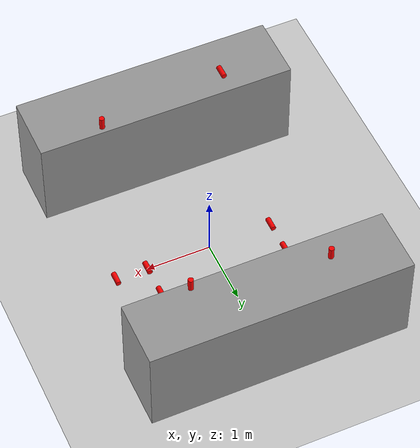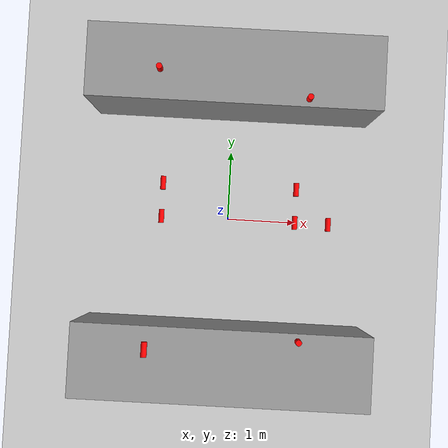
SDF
<sdf version="1.5">
 <world name="default">
  <include><uri>model://sun</uri></include>
  <include><uri>model://ground_plane</uri></include>
  <include><uri>model://asphalt_plane</uri><pose>0 0 -0.055 0 0 0</pose></include>
  <model name="unit_box">
   <static>1</static>
   <pose>0 -2.0 0.75 0 0 1.57079632679</pose>
   <link name="link">
    <inertial>
     <mass>1</mass>
     <inertia>
      <ixx>0.166667</ixx>
      <ixy>0</ixy>
      <ixz>0</ixz>
      <iyy>0.166667</iyy>
      <iyz>0</iyz>
      <izz>0.166667</izz>
     </inertia>
    </inertial>
    <collision name="collision"><geometry><box><size>1 4 1.5</size></box></geometry></collision>
    <visual name="visual">
     <geometry><box><size>1 4 1.5</size></box></geometry>
     <material>
      <script><name>Gazebo/Grey</name><uri>file://media/materials/scripts/gazebo.material</uri></script>
     </material>
    </visual>
   </link>
  </model>
  <model name="cylinder_red_shelf">
   <link name="link_0">
    <pose>1.0 -1.6 1.6 0 0 0</pose>
    <inertial>
     <mass>1</mass>
     <inertia><ixx>0.145833</ixx><ixy>0</ixy><ixz>0</ixz><iyy>0.145833</iyy><iyz>0</iyz><izz>0.125</izz></inertia>
    </inertial>
    <visual name="visual">
     <geometry><cylinder><radius>0.04</radius><length>0.2</length></cylinder></geometry>
     <material>
      <lighting>1</lighting>
      <script><uri>file://media/materials/scripts/gazebo.material</uri><name>Gazebo/Grey</name></script>
      <ambient>1 0 0 1</ambient>
      <diffuse>1 0 0 1</diffuse>
      <specular>0 0 0 1</specular>
      <emissive>0 0 0 1</emissive>
      <shader type="vertex"><normal_map>__default__</normal_map></shader>
     </material>
    </visual>
    <collision name="collision">
     <geometry><cylinder><radius>0.04</radius><length>0.2</length></cylinder></geometry>
     <surface>
      <friction>
       <ode><mu>1</mu><mu2>1</mu2><fdir1>0 0 0</fdir1><slip1>0</slip1><slip2>0</slip2></ode>
       <torsional>
        <coefficient>1</coefficient>
        <patch_radius>0</patch_radius>
        <surface_radius>0</surface_radius>
        <use_patch_radius>1</use_patch_radius>
        <ode><slip>0</slip></ode>
       </torsional>
      </friction>
      <bounce><restitution_coefficient>0</restitution_coefficient><threshold>1e+06</threshold></bounce>
      <contact>
       <collide_without_contact>0</collide_without_contact>
       <collide_without_contact_bitmask>1</collide_without_contact_bitmask>
       <collide_bitmask>1</collide_bitmask>
       <ode>
        <soft_cfm>0</soft_cfm>
        <soft_erp>0.2</soft_erp>
        <kp>1e+13</kp>
        <kd>1</kd>
        <max_vel>0.01</max_vel>
        <min_depth>0</min_depth>
       </ode>
       <bullet>
        <split_impulse>1</split_impulse>
        <split_impulse_penetration_threshold>-0.01</split_impulse_penetration_threshold>
        <soft_cfm>0</soft_cfm>
        <soft_erp>0.2</soft_erp>
        <kp>1e+13</kp>
        <kd>1</kd>
       </bullet>
      </contact>
     </surface>
    </collision>
   </link>
   <static>1</static>
  </model>
  <model name="cylinder_red_shelf">
   <link name="link_0">
    <pose>-1.0 -1.8 1.6 1.57079632679 0 0</pose>
    <inertial>
     <mass>1</mass>
     <inertia><ixx>0.145833</ixx><ixy>0</ixy><ixz>0</ixz><iyy>0.145833</iyy><iyz>0</iyz><izz>0.125</izz></inertia>
    </inertial>
    <visual name="visual">
     <geometry><cylinder><radius>0.04</radius><length>0.2</length></cylinder></geometry>
     <material>
      <lighting>1</lighting>
      <script><uri>file://media/materials/scripts/gazebo.material</uri><name>Gazebo/Grey</name></script>
      <ambient>1 0 0 1</ambient>
      <diffuse>1 0 0 1</diffuse>
      <specular>0 0 0 1</specular>
      <emissive>0 0 0 1</emissive>
      <shader type="vertex"><normal_map>__default__</normal_map></shader>
     </material>
    </visual>
    <collision name="collision">
     <geometry><cylinder><radius>0.04</radius><length>0.2</length></cylinder></geometry>
     <surface>
      <friction>
       <ode><mu>1</mu><mu2>1</mu2><fdir1>0 0 0</fdir1><slip1>0</slip1><slip2>0</slip2></ode>
       <torsional>
        <coefficient>1</coefficient>
        <patch_radius>0</patch_radius>
        <surface_radius>0</surface_radius>
        <use_patch_radius>1</use_patch_radius>
        <ode><slip>0</slip></ode>
       </torsional>
      </friction>
      <bounce><restitution_coefficient>0</restitution_coefficient><threshold>1e+06</threshold></bounce>
      <contact>
       <collide_without_contact>0</collide_without_contact>
       <collide_without_contact_bitmask>1</collide_without_contact_bitmask>
       <collide_bitmask>1</collide_bitmask>
       <ode>
        <soft_cfm>0</soft_cfm>
        <soft_erp>0.2</soft_erp>
        <kp>1e+13</kp>
        <kd>1</kd>
        <max_vel>0.01</max_vel>
        <min_depth>0</min_depth>
       </ode>
       <bullet>
        <split_impulse>1</split_impulse>
        <split_impulse_penetration_threshold>-0.01</split_impulse_penetration_threshold>
        <soft_cfm>0</soft_cfm>
        <soft_erp>0.2</soft_erp>
        <kp>1e+13</kp>
        <kd>1</kd>
       </bullet>
      </contact>
     </surface>
    </collision>
   </link>
   <static>1</static>
  </model>
  <model name="unit_box">
   <static>1</static>
   <pose>0 2.0 0.75 0 0 1.57079632679</pose>
   <link name="link">
    <inertial>
     <mass>1</mass>
     <inertia>
      <ixx>0.166667</ixx>
      <ixy>0</ixy>
      <ixz>0</ixz>
      <iyy>0.166667</iyy>
      <iyz>0</iyz>
      <izz>0.166667</izz>
     </inertia>
    </inertial>
    <collision name="collision"><geometry><box><size>1 4 1.5</size></box></geometry></collision>
    <visual name="visual">
     <geometry><box><size>1 4 1.5</size></box></geometry>
     <material>
      <script><name>Gazebo/Grey</name><uri>file://media/materials/scripts/gazebo.material</uri></script>
     </material>
    </visual>
   </link>
  </model>
  <model name="cylinder_red_shelf">
   <link name="link_0">
    <pose>1.0 1.6 1.6 0 0 0</pose>
    <inertial>
     <mass>1</mass>
     <inertia><ixx>0.145833</ixx><ixy>0</ixy><ixz>0</ixz><iyy>0.145833</iyy><iyz>0</iyz><izz>0.125</izz></inertia>
    </inertial>
    <visual name="visual">
     <geometry><cylinder><radius>0.04</radius><length>0.2</length></cylinder></geometry>
     <material>
      <lighting>1</lighting>
      <script><uri>file://media/materials/scripts/gazebo.material</uri><name>Gazebo/Grey</name></script>
      <ambient>1 0 0 1</ambient>
      <diffuse>1 0 0 1</diffuse>
      <specular>0 0 0 1</specular>
      <emissive>0 0 0 1</emissive>
      <shader type="vertex"><normal_map>__default__</normal_map></shader>
     </material>
    </visual>
    <collision name="collision">
     <geometry><cylinder><radius>0.04</radius><length>0.2</length></cylinder></geometry>
     <surface>
      <friction>
       <ode><mu>1</mu><mu2>1</mu2><fdir1>0 0 0</fdir1><slip1>0</slip1><slip2>0</slip2></ode>
       <torsional>
        <coefficient>1</coefficient>
        <patch_radius>0</patch_radius>
        <surface_radius>0</surface_radius>
        <use_patch_radius>1</use_patch_radius>
        <ode><slip>0</slip></ode>
       </torsional>
      </friction>
      <bounce><restitution_coefficient>0</restitution_coefficient><threshold>1e+06</threshold></bounce>
      <contact>
       <collide_without_contact>0</collide_without_contact>
       <collide_without_contact_bitmask>1</collide_without_contact_bitmask>
       <collide_bitmask>1</collide_bitmask>
       <ode>
        <soft_cfm>0</soft_cfm>
        <soft_erp>0.2</soft_erp>
        <kp>1e+13</kp>
        <kd>1</kd>
        <max_vel>0.01</max_vel>
        <min_depth>0</min_depth>
       </ode>
       <bullet>
        <split_impulse>1</split_impulse>
        <split_impulse_penetration_threshold>-0.01</split_impulse_penetration_threshold>
        <soft_cfm>0</soft_cfm>
        <soft_erp>0.2</soft_erp>
        <kp>1e+13</kp>
        <kd>1</kd>
       </bullet>
      </contact>
     </surface>
    </collision>
   </link>
   <static>1</static>
  </model>
  <model name="cylinder_red_shelf">
   <link name="link_0">
    <pose>-1.0 1.9 1.6 0 0 0</pose>
    <inertial>
     <mass>1</mass>
     <inertia><ixx>0.145833</ixx><ixy>0</ixy><ixz>0</ixz><iyy>0.145833</iyy><iyz>0</iyz><izz>0.125</izz></inertia>
    </inertial>
    <visual name="visual">
     <geometry><cylinder><radius>0.04</radius><length>0.2</length></cylinder></geometry>
     <material>
      <lighting>1</lighting>
      <script><uri>file://media/materials/scripts/gazebo.material</uri><name>Gazebo/Grey</name></script>
      <ambient>1 0 0 1</ambient>
      <diffuse>1 0 0 1</diffuse>
      <specular>0 0 0 1</specular>
      <emissive>0 0 0 1</emissive>
      <shader type="vertex"><normal_map>__default__</normal_map></shader>
     </material>
    </visual>
    <collision name="collision">
     <geometry><cylinder><radius>0.04</radius><length>0.2</length></cylinder></geometry>
     <surface>
      <friction>
       <ode><mu>1</mu><mu2>1</mu2><fdir1>0 0 0</fdir1><slip1>0</slip1><slip2>0</slip2></ode>
       <torsional>
        <coefficient>1</coefficient>
        <patch_radius>0</patch_radius>
        <surface_radius>0</surface_radius>
        <use_patch_radius>1</use_patch_radius>
        <ode><slip>0</slip></ode>
       </torsional>
      </friction>
      <bounce><restitution_coefficient>0</restitution_coefficient><threshold>1e+06</threshold></bounce>
      <contact>
       <collide_without_contact>0</collide_without_contact>
       <collide_without_contact_bitmask>1</collide_without_contact_bitmask>
       <collide_bitmask>1</collide_bitmask>
       <ode>
        <soft_cfm>0</soft_cfm>
        <soft_erp>0.2</soft_erp>
        <kp>1e+13</kp>
        <kd>1</kd>
        <max_vel>0.01</max_vel>
        <min_depth>0</min_depth>
       </ode>
       <bullet>
        <split_impulse>1</split_impulse>
        <split_impulse_penetration_threshold>-0.01</split_impulse_penetration_threshold>
        <soft_cfm>0</soft_cfm>
        <soft_erp>0.2</soft_erp>
        <kp>1e+13</kp>
        <kd>1</kd>
       </bullet>
      </contact>
     </surface>
    </collision>
   </link>
   <static>1</static>
  </model>
  <model name="cylinder_red_floor">
   <link name="link_0">
    <pose>1.0 0 0.04 1.57079632679 0 0</pose>
    <inertial>
     <mass>1</mass>
     <inertia><ixx>0.145833</ixx><ixy>0</ixy><ixz>0</ixz><iyy>0.145833</iyy><iyz>0</iyz><izz>0.125</izz></inertia>
    </inertial>
    <visual name="visual">
     <geometry><cylinder><radius>0.04</radius><length>0.2</length></cylinder></geometry>
     <material>
      <lighting>1</lighting>
      <script><uri>file://media/materials/scripts/gazebo.material</uri><name>Gazebo/Grey</name></script>
      <ambient>1 0 0 1</ambient>
      <diffuse>1 0 0 1</diffuse>
      <specular>0 0 0 1</specular>
      <emissive>0 0 0 1</emissive>
      <shader type="vertex"><normal_map>__default__</normal_map></shader>
     </material>
    </visual>
    <collision name="collision">
     <geometry><cylinder><radius>0.04</radius><length>0.2</length></cylinder></geometry>
     <surface>
      <friction>
       <ode><mu>1</mu><mu2>1</mu2><fdir1>0 0 0</fdir1><slip1>0</slip1><slip2>0</slip2></ode>
       <torsional>
        <coefficient>1</coefficient>
        <patch_radius>0</patch_radius>
        <surface_radius>0</surface_radius>
        <use_patch_radius>1</use_patch_radius>
        <ode><slip>0</slip></ode>
       </torsional>
      </friction>
      <bounce><restitution_coefficient>0</restitution_coefficient><threshold>1e+06</threshold></bounce>
      <contact>
       <collide_without_contact>0</collide_without_contact>
       <collide_without_contact_bitmask>1</collide_without_contact_bitmask>
       <collide_bitmask>1</collide_bitmask>
       <ode>
        <soft_cfm>0</soft_cfm>
        <soft_erp>0.2</soft_erp>
        <kp>1e+13</kp>
        <kd>1</kd>
        <max_vel>0.01</max_vel>
        <min_depth>0</min_depth>
       </ode>
       <bullet>
        <split_impulse>1</split_impulse>
        <split_impulse_penetration_threshold>-0.01</split_impulse_penetration_threshold>
        <soft_cfm>0</soft_cfm>
        <soft_erp>0.2</soft_erp>
        <kp>1e+13</kp>
        <kd>1</kd>
       </bullet>
      </contact>
     </surface>
    </collision>
   </link>
   <static>1</static>
  </model>
  <model name="cylinder_red_floor">
   <link name="link_0">
    <pose>1.0 0.5 0.04 1.57079632679 0 0</pose>
    <inertial>
     <mass>1</mass>
     <inertia><ixx>0.145833</ixx><ixy>0</ixy><ixz>0</ixz><iyy>0.145833</iyy><iyz>0</iyz><izz>0.125</izz></inertia>
    </inertial>
    <visual name="visual">
     <geometry><cylinder><radius>0.04</radius><length>0.2</length></cylinder></geometry>
     <material>
      <lighting>1</lighting>
      <script><uri>file://media/materials/scripts/gazebo.material</uri><name>Gazebo/Grey</name></script>
      <ambient>1 0 0 1</ambient>
      <diffuse>1 0 0 1</diffuse>
      <specular>0 0 0 1</specular>
      <emissive>0 0 0 1</emissive>
      <shader type="vertex"><normal_map>__default__</normal_map></shader>
     </material>
    </visual>
    <collision name="collision">
     <geometry><cylinder><radius>0.04</radius><length>0.2</length></cylinder></geometry>
     <surface>
      <friction>
       <ode><mu>1</mu><mu2>1</mu2><fdir1>0 0 0</fdir1><slip1>0</slip1><slip2>0</slip2></ode>
       <torsional>
        <coefficient>1</coefficient>
        <patch_radius>0</patch_radius>
        <surface_radius>0</surface_radius>
        <use_patch_radius>1</use_patch_radius>
        <ode><slip>0</slip></ode>
       </torsional>
      </friction>
      <bounce><restitution_coefficient>0</restitution_coefficient><threshold>1e+06</threshold></bounce>
      <contact>
       <collide_without_contact>0</collide_without_contact>
       <collide_without_contact_bitmask>1</collide_without_contact_bitmask>
       <collide_bitmask>1</collide_bitmask>
       <ode>
        <soft_cfm>0</soft_cfm>
        <soft_erp>0.2</soft_erp>
        <kp>1e+13</kp>
        <kd>1</kd>
        <max_vel>0.01</max_vel>
        <min_depth>0</min_depth>
       </ode>
       <bullet>
        <split_impulse>1</split_impulse>
        <split_impulse_penetration_threshold>-0.01</split_impulse_penetration_threshold>
        <soft_cfm>0</soft_cfm>
        <soft_erp>0.2</soft_erp>
        <kp>1e+13</kp>
        <kd>1</kd>
       </bullet>
      </contact>
     </surface>
    </collision>
   </link>
   <static>1</static>
  </model>
  <model name="cylinder_red_floor">
   <link name="link_0">
    <pose>1.5 0 0.04 1.57079632679 0 0</pose>
    <inertial>
     <mass>1</mass>
     <inertia><ixx>0.145833</ixx><ixy>0</ixy><ixz>0</ixz><iyy>0.145833</iyy><iyz>0</iyz><izz>0.125</izz></inertia>
    </inertial>
    <visual name="visual">
     <geometry><cylinder><radius>0.04</radius><length>0.2</length></cylinder></geometry>
     <material>
      <lighting>1</lighting>
      <script><uri>file://media/materials/scripts/gazebo.material</uri><name>Gazebo/Grey</name></script>
      <ambient>1 0 0 1</ambient>
      <diffuse>1 0 0 1</diffuse>
      <specular>0 0 0 1</specular>
      <emissive>0 0 0 1</emissive>
      <shader type="vertex"><normal_map>__default__</normal_map></shader>
     </material>
    </visual>
    <collision name="collision">
     <geometry><cylinder><radius>0.04</radius><length>0.2</length></cylinder></geometry>
     <surface>
      <friction>
       <ode><mu>1</mu><mu2>1</mu2><fdir1>0 0 0</fdir1><slip1>0</slip1><slip2>0</slip2></ode>
       <torsional>
        <coefficient>1</coefficient>
        <patch_radius>0</patch_radius>
        <surface_radius>0</surface_radius>
        <use_patch_radius>1</use_patch_radius>
        <ode><slip>0</slip></ode>
       </torsional>
      </friction>
      <bounce><restitution_coefficient>0</restitution_coefficient><threshold>1e+06</threshold></bounce>
      <contact>
       <collide_without_contact>0</collide_without_contact>
       <collide_without_contact_bitmask>1</collide_without_contact_bitmask>
       <collide_bitmask>1</collide_bitmask>
       <ode>
        <soft_cfm>0</soft_cfm>
        <soft_erp>0.2</soft_erp>
        <kp>1e+13</kp>
        <kd>1</kd>
        <max_vel>0.01</max_vel>
        <min_depth>0</min_depth>
       </ode>
       <bullet>
        <split_impulse>1</split_impulse>
        <split_impulse_penetration_threshold>-0.01</split_impulse_penetration_threshold>
        <soft_cfm>0</soft_cfm>
        <soft_erp>0.2</soft_erp>
        <kp>1e+13</kp>
        <kd>1</kd>
       </bullet>
      </contact>
     </surface>
    </collision>
   </link>
   <static>1</static>
  </model>
  <model name="cylinder_red_floor">
   <link name="link_0">
    <pose>-1.0 0 0.04 1.57079632679 0 0</pose>
    <inertial>
     <mass>1</mass>
     <inertia><ixx>0.145833</ixx><ixy>0</ixy><ixz>0</ixz><iyy>0.145833</iyy><iyz>0</iyz><izz>0.125</izz></inertia>
    </inertial>
    <visual name="visual">
     <geometry><cylinder><radius>0.04</radius><length>0.2</length></cylinder></geometry>
     <material>
      <lighting>1</lighting>
      <script><uri>file://media/materials/scripts/gazebo.material</uri><name>Gazebo/Grey</name></script>
      <ambient>1 0 0 1</ambient>
      <diffuse>1 0 0 1</diffuse>
      <specular>0 0 0 1</specular>
      <emissive>0 0 0 1</emissive>
      <shader type="vertex"><normal_map>__default__</normal_map></shader>
     </material>
    </visual>
    <collision name="collision">
     <geometry><cylinder><radius>0.04</radius><length>0.2</length></cylinder></geometry>
     <surface>
      <friction>
       <ode><mu>1</mu><mu2>1</mu2><fdir1>0 0 0</fdir1><slip1>0</slip1><slip2>0</slip2></ode>
       <torsional>
        <coefficient>1</coefficient>
        <patch_radius>0</patch_radius>
        <surface_radius>0</surface_radius>
        <use_patch_radius>1</use_patch_radius>
        <ode><slip>0</slip></ode>
       </torsional>
      </friction>
      <bounce><restitution_coefficient>0</restitution_coefficient><threshold>1e+06</threshold></bounce>
      <contact>
       <collide_without_contact>0</collide_without_contact>
       <collide_without_contact_bitmask>1</collide_without_contact_bitmask>
       <collide_bitmask>1</collide_bitmask>
       <ode>
        <soft_cfm>0</soft_cfm>
        <soft_erp>0.2</soft_erp>
        <kp>1e+13</kp>
        <kd>1</kd>
        <max_vel>0.01</max_vel>
        <min_depth>0</min_depth>
       </ode>
       <bullet>
        <split_impulse>1</split_impulse>
        <split_impulse_penetration_threshold>-0.01</split_impulse_penetration_threshold>
        <soft_cfm>0</soft_cfm>
        <soft_erp>0.2</soft_erp>
        <kp>1e+13</kp>
        <kd>1</kd>
       </bullet>
      </contact>
     </surface>
    </collision>
   </link>
   <static>1</static>
  </model>
  <model name="cylinder_red_floor">
   <link name="link_0">
    <pose>-1.0 0.5 0.04 1.57079632679 0 0</pose>
    <inertial>
     <mass>1</mass>
     <inertia><ixx>0.145833</ixx><ixy>0</ixy><ixz>0</ixz><iyy>0.145833</iyy><iyz>0</iyz><izz>0.125</izz></inertia>
    </inertial>
    <visual name="visual">
     <geometry><cylinder><radius>0.04</radius><length>0.2</length></cylinder></geometry>
     <material>
      <lighting>1</lighting>
      <script><uri>file://media/materials/scripts/gazebo.material</uri><name>Gazebo/Grey</name></script>
      <ambient>1 0 0 1</ambient>
      <diffuse>1 0 0 1</diffuse>
      <specular>0 0 0 1</specular>
      <emissive>0 0 0 1</emissive>
      <shader type="vertex"><normal_map>__default__</normal_map></shader>
     </material>
    </visual>
    <collision name="collision">
     <geometry><cylinder><radius>0.04</radius><length>0.2</length></cylinder></geometry>
     <surface>
      <friction>
       <ode><mu>1</mu><mu2>1</mu2><fdir1>0 0 0</fdir1><slip1>0</slip1><slip2>0</slip2></ode>
       <torsional>
        <coefficient>1</coefficient>
        <patch_radius>0</patch_radius>
        <surface_radius>0</surface_radius>
        <use_patch_radius>1</use_patch_radius>
        <ode><slip>0</slip></ode>
       </torsional>
      </friction>
      <bounce><restitution_coefficient>0</restitution_coefficient><threshold>1e+06</threshold></bounce>
      <contact>
       <collide_without_contact>0</collide_without_contact>
       <collide_without_contact_bitmask>1</collide_without_contact_bitmask>
       <collide_bitmask>1</collide_bitmask>
       <ode>
        <soft_cfm>0</soft_cfm>
        <soft_erp>0.2</soft_erp>
        <kp>1e+13</kp>
        <kd>1</kd>
        <max_vel>0.01</max_vel>
        <min_depth>0</min_depth>
       </ode>
       <bullet>
        <split_impulse>1</split_impulse>
        <split_impulse_penetration_threshold>-0.01</split_impulse_penetration_threshold>
        <soft_cfm>0</soft_cfm>
        <soft_erp>0.2</soft_erp>
        <kp>1e+13</kp>
        <kd>1</kd>
       </bullet>
      </contact>
     </surface>
    </collision>
   </link>
   <static>1</static>
  </model>
  <model name="cylinder_red_floor">
   <link name="link_0">
    <pose>1.0 0 0.04 1.57079632679 0 0</pose>
    <inertial>
     <mass>1</mass>
     <inertia><ixx>0.145833</ixx><ixy>0</ixy><ixz>0</ixz><iyy>0.145833</iyy><iyz>0</iyz><izz>0.125</izz></inertia>
    </inertial>
    <visual name="visual">
     <geometry><cylinder><radius>0.04</radius><length>0.2</length></cylinder></geometry>
     <material>
      <lighting>1</lighting>
      <script><uri>file://media/materials/scripts/gazebo.material</uri><name>Gazebo/Grey</name></script>
      <ambient>1 0 0 1</ambient>
      <diffuse>1 0 0 1</diffuse>
      <specular>0 0 0 1</specular>
      <emissive>0 0 0 1</emissive>
      <shader type="vertex"><normal_map>__default__</normal_map></shader>
     </material>
    </visual>
    <collision name="collision">
     <geometry><cylinder><radius>0.04</radius><length>0.2</length></cylinder></geometry>
     <surface>
      <friction>
       <ode><mu>1</mu><mu2>1</mu2><fdir1>0 0 0</fdir1><slip1>0</slip1><slip2>0</slip2></ode>
       <torsional>
        <coefficient>1</coefficient>
        <patch_radius>0</patch_radius>
        <surface_radius>0</surface_radius>
        <use_patch_radius>1</use_patch_radius>
        <ode><slip>0</slip></ode>
       </torsional>
      </friction>
      <bounce><restitution_coefficient>0</restitution_coefficient><threshold>1e+06</threshold></bounce>
      <contact>
       <collide_without_contact>0</collide_without_contact>
       <collide_without_contact_bitmask>1</collide_without_contact_bitmask>
       <collide_bitmask>1</collide_bitmask>
       <ode>
        <soft_cfm>0</soft_cfm>
        <soft_erp>0.2</soft_erp>
        <kp>1e+13</kp>
        <kd>1</kd>
        <max_vel>0.01</max_vel>
        <min_depth>0</min_depth>
       </ode>
       <bullet>
        <split_impulse>1</split_impulse>
        <split_impulse_penetration_threshold>-0.01</split_impulse_penetration_threshold>
        <soft_cfm>0</soft_cfm>
        <soft_erp>0.2</soft_erp>
        <kp>1e+13</kp>
        <kd>1</kd>
       </bullet>
      </contact>
     </surface>
    </collision>
   </link>
   <static>1</static>
  </model>
  <model name="cylinder_red_floor">
   <link name="link_0">
    <pose>1.0 0 0.04 1.57079632679 0 0</pose>
    <inertial>
     <mass>1</mass>
     <inertia><ixx>0.145833</ixx><ixy>0</ixy><ixz>0</ixz><iyy>0.145833</iyy><iyz>0</iyz><izz>0.125</izz></inertia>
    </inertial>
    <visual name="visual">
     <geometry><cylinder><radius>0.04</radius><length>0.2</length></cylinder></geometry>
     <material>
      <lighting>1</lighting>
      <script><uri>file://media/materials/scripts/gazebo.material</uri><name>Gazebo/Grey</name></script>
      <ambient>1 0 0 1</ambient>
      <diffuse>1 0 0 1</diffuse>
      <specular>0 0 0 1</specular>
      <emissive>0 0 0 1</emissive>
      <shader type="vertex"><normal_map>__default__</normal_map></shader>
     </material>
    </visual>
    <collision name="collision">
     <geometry><cylinder><radius>0.04</radius><length>0.2</length></cylinder></geometry>
     <surface>
      <friction>
       <ode><mu>1</mu><mu2>1</mu2><fdir1>0 0 0</fdir1><slip1>0</slip1><slip2>0</slip2></ode>
       <torsional>
        <coefficient>1</coefficient>
        <patch_radius>0</patch_radius>
        <surface_radius>0</surface_radius>
        <use_patch_radius>1</use_patch_radius>
        <ode><slip>0</slip></ode>
       </torsional>
      </friction>
      <bounce><restitution_coefficient>0</restitution_coefficient><threshold>1e+06</threshold></bounce>
      <contact>
       <collide_without_contact>0</collide_without_contact>
       <collide_without_contact_bitmask>1</collide_without_contact_bitmask>
       <collide_bitmask>1</collide_bitmask>
       <ode>
        <soft_cfm>0</soft_cfm>
        <soft_erp>0.2</soft_erp>
        <kp>1e+13</kp>
        <kd>1</kd>
        <max_vel>0.01</max_vel>
        <min_depth>0</min_depth>
       </ode>
       <bullet>
        <split_impulse>1</split_impulse>
        <split_impulse_penetration_threshold>-0.01</split_impulse_penetration_threshold>
        <soft_cfm>0</soft_cfm>
        <soft_erp>0.2</soft_erp>
        <kp>1e+13</kp>
        <kd>1</kd>
       </bullet>
      </contact>
     </surface>
    </collision>
   </link>
   <static>1</static>
  </model>
 </world>
</sdf>
